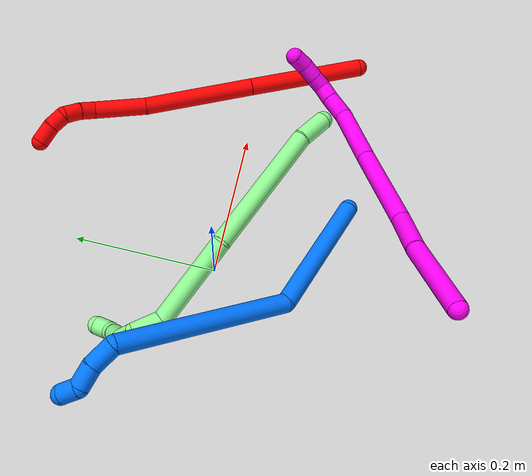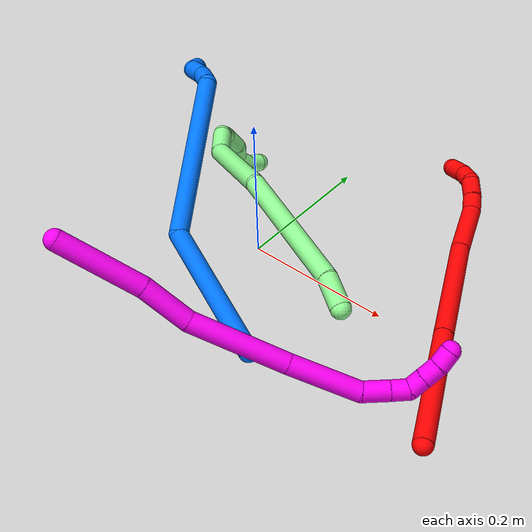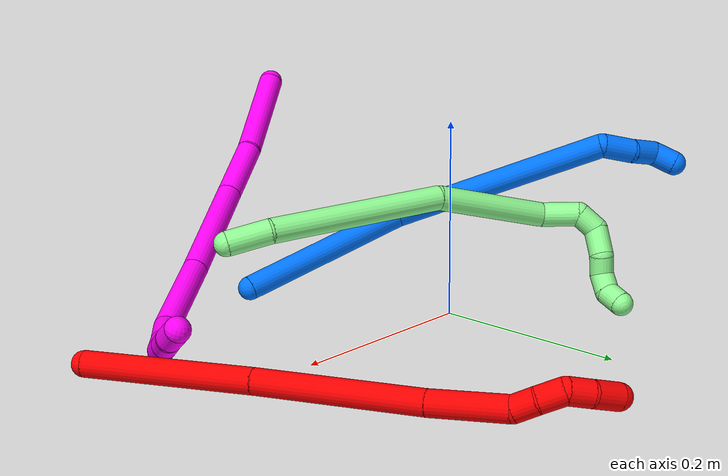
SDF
<sdf version="1.7">
 <world name="default">
  <model name="2">
   <static>0</static>
   <link name="2">
    <collision name="collision-cylinder-e_1_1_4">
     <pose>-0.028417 0.07416 0.022907 -1.27121 -0.35096 0.26013</pose>
     <geometry><cylinder><radius>0.0125</radius><length>0.165312</length></cylinder></geometry>
     <surface>
      <friction><ode><mu>1.16</mu><mu2>1.16</mu2><slip1>0</slip1><slip2>0</slip2></ode></friction>
      <contact><ode><kp>1e+06</kp><kd>1</kd><max_vel>0</max_vel><min_depth>0.001</min_depth></ode></contact>
     </surface>
    </collision>
    <visual name="visual-cylinder-e_1_1_4">
     <pose>-0.028417 0.07416 0.022907 -1.27121 -0.35096 0.26013</pose>
     <geometry><cylinder><radius>0.0125</radius><length>0.165312</length></cylinder></geometry>
     <material><ambient>1 0 0 1</ambient></material>
    </visual>
    <collision name="collision-cylinder-e_2_4_5">
     <pose>-0.082814 0.220427 0.067933 -1.27314 -0.331733 0.246249</pose>
     <geometry><cylinder><radius>0.0125</radius><length>0.159544</length></cylinder></geometry>
     <surface>
      <friction><ode><mu>1.16</mu><mu2>1.16</mu2><slip1>0</slip1><slip2>0</slip2></ode></friction>
      <contact><ode><kp>1e+06</kp><kd>1</kd><max_vel>0</max_vel><min_depth>0.001</min_depth></ode></contact>
     </surface>
    </collision>
    <visual name="visual-cylinder-e_2_4_5">
     <pose>-0.082814 0.220427 0.067933 -1.27314 -0.331733 0.246249</pose>
     <geometry><cylinder><radius>0.0125</radius><length>0.159544</length></cylinder></geometry>
     <material><ambient>1 0 0 1</ambient></material>
    </visual>
    <collision name="collision-cylinder-e_3_5_6">
     <pose>-0.123238 0.325096 0.103883 -1.16916 -0.387606 0.258306</pose>
     <geometry><cylinder><radius>0.0125</radius><length>0.076426</length></cylinder></geometry>
     <surface>
      <friction><ode><mu>1.16</mu><mu2>1.16</mu2><slip1>0</slip1><slip2>0</slip2></ode></friction>
      <contact><ode><kp>1e+06</kp><kd>1</kd><max_vel>0</max_vel><min_depth>0.001</min_depth></ode></contact>
     </surface>
    </collision>
    <visual name="visual-cylinder-e_3_5_6">
     <pose>-0.123238 0.325096 0.103883 -1.16916 -0.387606 0.258306</pose>
     <geometry><cylinder><radius>0.0125</radius><length>0.076426</length></cylinder></geometry>
     <material><ambient>1 0 0 1</ambient></material>
    </visual>
    <collision name="collision-cylinder-e_4_6_7">
     <pose>-0.145677 0.365188 0.120355 -1.23335 -0.786359 0.571954</pose>
     <geometry><cylinder><radius>0.0125</radius><length>0.022591</length></cylinder></geometry>
     <surface>
      <friction><ode><mu>1.16</mu><mu2>1.16</mu2><slip1>0</slip1><slip2>0</slip2></ode></friction>
      <contact><ode><kp>1e+06</kp><kd>1</kd><max_vel>0</max_vel><min_depth>0.001</min_depth></ode></contact>
     </surface>
    </collision>
    <visual name="visual-cylinder-e_4_6_7">
     <pose>-0.145677 0.365188 0.120355 -1.23335 -0.786359 0.571954</pose>
     <geometry><cylinder><radius>0.0125</radius><length>0.022591</length></cylinder></geometry>
     <material><ambient>1 0 0 1</ambient></material>
    </visual>
    <collision name="collision-cylinder-e_5_7_8">
     <pose>-0.162231 0.381701 0.123956 -1.46439 -0.758393 0.687896</pose>
     <geometry><cylinder><radius>0.0125</radius><length>0.024891</length></cylinder></geometry>
     <surface>
      <friction><ode><mu>1.16</mu><mu2>1.16</mu2><slip1>0</slip1><slip2>0</slip2></ode></friction>
      <contact><ode><kp>1e+06</kp><kd>1</kd><max_vel>0</max_vel><min_depth>0.001</min_depth></ode></contact>
     </surface>
    </collision>
    <visual name="visual-cylinder-e_5_7_8">
     <pose>-0.162231 0.381701 0.123956 -1.46439 -0.758393 0.687896</pose>
     <geometry><cylinder><radius>0.0125</radius><length>0.024891</length></cylinder></geometry>
     <material><ambient>1 0 0 1</ambient></material>
    </visual>
    <collision name="collision-cylinder-e_6_8_9">
     <pose>-0.173616 0.401691 0.121938 -1.83505 -0.242912 0.31628</pose>
     <geometry><cylinder><radius>0.0125</radius><length>0.023494</length></cylinder></geometry>
     <surface>
      <friction><ode><mu>1.16</mu><mu2>1.16</mu2><slip1>0</slip1><slip2>0</slip2></ode></friction>
      <contact><ode><kp>1e+06</kp><kd>1</kd><max_vel>0</max_vel><min_depth>0.001</min_depth></ode></contact>
     </surface>
    </collision>
    <visual name="visual-cylinder-e_6_8_9">
     <pose>-0.173616 0.401691 0.121938 -1.83505 -0.242912 0.31628</pose>
     <geometry><cylinder><radius>0.0125</radius><length>0.023494</length></cylinder></geometry>
     <material><ambient>1 0 0 1</ambient></material>
    </visual>
    <collision name="collision-cylinder-e_7_9_2">
     <pose>-0.179036 0.424736 0.112577 -2.05828 -0.188151 0.311098</pose>
     <geometry><cylinder><radius>0.0125</radius><length>0.027743</length></cylinder></geometry>
     <surface>
      <friction><ode><mu>1.16</mu><mu2>1.16</mu2><slip1>0</slip1><slip2>0</slip2></ode></friction>
      <contact><ode><kp>1e+06</kp><kd>1</kd><max_vel>0</max_vel><min_depth>0.001</min_depth></ode></contact>
     </surface>
    </collision>
    <visual name="visual-cylinder-e_7_9_2">
     <pose>-0.179036 0.424736 0.112577 -2.05828 -0.188151 0.311098</pose>
     <geometry><cylinder><radius>0.0125</radius><length>0.027743</length></cylinder></geometry>
     <material><ambient>1 0 0 1</ambient></material>
    </visual>
    <collision name="collision-sphere-2">
     <pose>-0.18163 0.436776 0.106194 0 -0 0</pose>
     <geometry><sphere><radius>0.0125</radius></sphere></geometry>
     <surface>
      <friction><ode><mu>1.16</mu><mu2>1.16</mu2><slip1>0</slip1><slip2>0</slip2></ode></friction>
      <contact><ode><kp>1e+06</kp><kd>1</kd><max_vel>0</max_vel><min_depth>0.001</min_depth></ode></contact>
     </surface>
    </collision>
    <visual name="visual-sphere-2">
     <pose>-0.18163 0.436776 0.106194 0 -0 0</pose>
     <geometry><sphere><radius>0.0125</radius></sphere></geometry>
     <material><ambient>1 0 0 1</ambient></material>
    </visual>
    <collision name="collision-sphere-9">
     <pose>-0.176441 0.412697 0.11896 0 -0 0</pose>
     <geometry><sphere><radius>0.0125</radius></sphere></geometry>
     <surface>
      <friction><ode><mu>1.16</mu><mu2>1.16</mu2><slip1>0</slip1><slip2>0</slip2></ode></friction>
      <contact><ode><kp>1e+06</kp><kd>1</kd><max_vel>0</max_vel><min_depth>0.001</min_depth></ode></contact>
     </surface>
    </collision>
    <visual name="visual-sphere-9">
     <pose>-0.176441 0.412697 0.11896 0 -0 0</pose>
     <geometry><sphere><radius>0.0125</radius></sphere></geometry>
     <material><ambient>1 0 0 1</ambient></material>
    </visual>
    <collision name="collision-sphere-4">
     <pose>-0.056834 0.14832 0.045813 0 -0 0</pose>
     <geometry><sphere><radius>0.0125</radius></sphere></geometry>
     <surface>
      <friction><ode><mu>1.16</mu><mu2>1.16</mu2><slip1>0</slip1><slip2>0</slip2></ode></friction>
      <contact><ode><kp>1e+06</kp><kd>1</kd><max_vel>0</max_vel><min_depth>0.001</min_depth></ode></contact>
     </surface>
    </collision>
    <visual name="visual-sphere-4">
     <pose>-0.056834 0.14832 0.045813 0 -0 0</pose>
     <geometry><sphere><radius>0.0125</radius></sphere></geometry>
     <material><ambient>1 0 0 1</ambient></material>
    </visual>
    <collision name="collision-sphere-1">
     <geometry><sphere><radius>0.0125</radius></sphere></geometry>
     <surface>
      <friction><ode><mu>1.16</mu><mu2>1.16</mu2><slip1>0</slip1><slip2>0</slip2></ode></friction>
      <contact><ode><kp>1e+06</kp><kd>1</kd><max_vel>0</max_vel><min_depth>0.001</min_depth></ode></contact>
     </surface>
    </collision>
    <visual name="visual-sphere-1">
     <geometry><sphere><radius>0.0125</radius></sphere></geometry>
     <material><ambient>1 0 0 1</ambient></material>
    </visual>
    <collision name="collision-sphere-8">
     <pose>-0.17079 0.390685 0.124916 0 -0 0</pose>
     <geometry><sphere><radius>0.0125</radius></sphere></geometry>
     <surface>
      <friction><ode><mu>1.16</mu><mu2>1.16</mu2><slip1>0</slip1><slip2>0</slip2></ode></friction>
      <contact><ode><kp>1e+06</kp><kd>1</kd><max_vel>0</max_vel><min_depth>0.001</min_depth></ode></contact>
     </surface>
    </collision>
    <visual name="visual-sphere-8">
     <pose>-0.17079 0.390685 0.124916 0 -0 0</pose>
     <geometry><sphere><radius>0.0125</radius></sphere></geometry>
     <material><ambient>1 0 0 1</ambient></material>
    </visual>
    <collision name="collision-sphere-5">
     <pose>-0.108795 0.292533 0.090053 0 -0 0</pose>
     <geometry><sphere><radius>0.0125</radius></sphere></geometry>
     <surface>
      <friction><ode><mu>1.16</mu><mu2>1.16</mu2><slip1>0</slip1><slip2>0</slip2></ode></friction>
      <contact><ode><kp>1e+06</kp><kd>1</kd><max_vel>0</max_vel><min_depth>0.001</min_depth></ode></contact>
     </surface>
    </collision>
    <visual name="visual-sphere-5">
     <pose>-0.108795 0.292533 0.090053 0 -0 0</pose>
     <geometry><sphere><radius>0.0125</radius></sphere></geometry>
     <material><ambient>1 0 0 1</ambient></material>
    </visual>
    <collision name="collision-sphere-6">
     <pose>-0.137682 0.357658 0.117713 0 -0 0</pose>
     <geometry><sphere><radius>0.0125</radius></sphere></geometry>
     <surface>
      <friction><ode><mu>1.16</mu><mu2>1.16</mu2><slip1>0</slip1><slip2>0</slip2></ode></friction>
      <contact><ode><kp>1e+06</kp><kd>1</kd><max_vel>0</max_vel><min_depth>0.001</min_depth></ode></contact>
     </surface>
    </collision>
    <visual name="visual-sphere-6">
     <pose>-0.137682 0.357658 0.117713 0 -0 0</pose>
     <geometry><sphere><radius>0.0125</radius></sphere></geometry>
     <material><ambient>1 0 0 1</ambient></material>
    </visual>
    <collision name="collision-sphere-7">
     <pose>-0.153671 0.372718 0.122997 0 -0 0</pose>
     <geometry><sphere><radius>0.0125</radius></sphere></geometry>
     <surface>
      <friction><ode><mu>1.16</mu><mu2>1.16</mu2><slip1>0</slip1><slip2>0</slip2></ode></friction>
      <contact><ode><kp>1e+06</kp><kd>1</kd><max_vel>0</max_vel><min_depth>0.001</min_depth></ode></contact>
     </surface>
    </collision>
    <visual name="visual-sphere-7">
     <pose>-0.153671 0.372718 0.122997 0 -0 0</pose>
     <geometry><sphere><radius>0.0125</radius></sphere></geometry>
     <material><ambient>1 0 0 1</ambient></material>
    </visual>
    <inertial>
     <pose>-0.087407 0.222489 0.068713 0 -0 0</pose>
     <mass>0.5</mass>
     <inertia>
      <ixx>0.000877</ixx>
      <ixy>0</ixy>
      <ixz>0</ixz>
      <iyy>0.000504</iyy>
      <iyz>0</iyz>
      <izz>-0.000425</izz>
     </inertia>
    </inertial>
   </link>
   <pose>0.355545 -0.135588 0.011497 -1.11576 1.11723 -0.430069</pose>
  </model>
  <model name="10">
   <static>0</static>
   <link name="10">
    <collision name="collision-cylinder-e_1_1_4">
     <pose>0.034156 0.029246 -0.029288 -2.35691 0.689935 -1.43015</pose>
     <geometry><cylinder><radius>0.0125</radius><length>0.107326</length></cylinder></geometry>
     <surface>
      <friction><ode><mu>1.16</mu><mu2>1.16</mu2><slip1>0</slip1><slip2>0</slip2></ode></friction>
      <contact><ode><kp>1e+06</kp><kd>1</kd><max_vel>0</max_vel><min_depth>0.001</min_depth></ode></contact>
     </surface>
    </collision>
    <visual name="visual-cylinder-e_1_1_4">
     <pose>0.034156 0.029246 -0.029288 -2.35691 0.689935 -1.43015</pose>
     <geometry><cylinder><radius>0.0125</radius><length>0.107326</length></cylinder></geometry>
     <material><ambient>1 0 0.964706 1</ambient></material>
    </visual>
    <collision name="collision-cylinder-e_2_4_5">
     <pose>0.087997 0.071573 -0.078564 -2.56211 0.689227 -1.75536</pose>
     <geometry><cylinder><radius>0.0125</radius><length>0.061907</length></cylinder></geometry>
     <surface>
      <friction><ode><mu>1.16</mu><mu2>1.16</mu2><slip1>0</slip1><slip2>0</slip2></ode></friction>
      <contact><ode><kp>1e+06</kp><kd>1</kd><max_vel>0</max_vel><min_depth>0.001</min_depth></ode></contact>
     </surface>
    </collision>
    <visual name="visual-cylinder-e_2_4_5">
     <pose>0.087997 0.071573 -0.078564 -2.56211 0.689227 -1.75536</pose>
     <geometry><cylinder><radius>0.0125</radius><length>0.061907</length></cylinder></geometry>
     <material><ambient>1 0 0.964706 1</ambient></material>
    </visual>
    <collision name="collision-cylinder-e_3_5_6">
     <pose>0.152184 0.116358 -0.124906 -2.26428 0.823586 -1.49935</pose>
     <geometry><cylinder><radius>0.0125</radius><length>0.121328</length></cylinder></geometry>
     <surface>
      <friction><ode><mu>1.16</mu><mu2>1.16</mu2><slip1>0</slip1><slip2>0</slip2></ode></friction>
      <contact><ode><kp>1e+06</kp><kd>1</kd><max_vel>0</max_vel><min_depth>0.001</min_depth></ode></contact>
     </surface>
    </collision>
    <visual name="visual-cylinder-e_3_5_6">
     <pose>0.152184 0.116358 -0.124906 -2.26428 0.823586 -1.49935</pose>
     <geometry><cylinder><radius>0.0125</radius><length>0.121328</length></cylinder></geometry>
     <material><ambient>1 0 0.964706 1</ambient></material>
    </visual>
    <collision name="collision-cylinder-e_4_6_7">
     <pose>0.230598 0.171226 -0.168788 -2.21862 0.862489 -1.49318</pose>
     <geometry><cylinder><radius>0.0125</radius><length>0.089305</length></cylinder></geometry>
     <surface>
      <friction><ode><mu>1.16</mu><mu2>1.16</mu2><slip1>0</slip1><slip2>0</slip2></ode></friction>
      <contact><ode><kp>1e+06</kp><kd>1</kd><max_vel>0</max_vel><min_depth>0.001</min_depth></ode></contact>
     </surface>
    </collision>
    <visual name="visual-cylinder-e_4_6_7">
     <pose>0.230598 0.171226 -0.168788 -2.21862 0.862489 -1.49318</pose>
     <geometry><cylinder><radius>0.0125</radius><length>0.089305</length></cylinder></geometry>
     <material><ambient>1 0 0.964706 1</ambient></material>
    </visual>
    <collision name="collision-cylinder-e_5_7_8">
     <pose>0.27678 0.205861 -0.186798 -1.61268 0.818571 -0.8496</pose>
     <geometry><cylinder><radius>0.0125</radius><length>0.033609</length></cylinder></geometry>
     <surface>
      <friction><ode><mu>1.16</mu><mu2>1.16</mu2><slip1>0</slip1><slip2>0</slip2></ode></friction>
      <contact><ode><kp>1e+06</kp><kd>1</kd><max_vel>0</max_vel><min_depth>0.001</min_depth></ode></contact>
     </surface>
    </collision>
    <visual name="visual-cylinder-e_5_7_8">
     <pose>0.27678 0.205861 -0.186798 -1.61268 0.818571 -0.8496</pose>
     <geometry><cylinder><radius>0.0125</radius><length>0.033609</length></cylinder></geometry>
     <material><ambient>1 0 0.964706 1</ambient></material>
    </visual>
    <collision name="collision-cylinder-e_6_8_9">
     <pose>0.297846 0.224597 -0.186954 -1.52609 0.880042 -0.846063</pose>
     <geometry><cylinder><radius>0.0125</radius><length>0.022825</length></cylinder></geometry>
     <surface>
      <friction><ode><mu>1.16</mu><mu2>1.16</mu2><slip1>0</slip1><slip2>0</slip2></ode></friction>
      <contact><ode><kp>1e+06</kp><kd>1</kd><max_vel>0</max_vel><min_depth>0.001</min_depth></ode></contact>
     </surface>
    </collision>
    <visual name="visual-cylinder-e_6_8_9">
     <pose>0.297846 0.224597 -0.186954 -1.52609 0.880042 -0.846063</pose>
     <geometry><cylinder><radius>0.0125</radius><length>0.022825</length></cylinder></geometry>
     <material><ambient>1 0 0.964706 1</ambient></material>
    </visual>
    <collision name="collision-cylinder-e_7_9_10">
     <pose>0.312043 0.237536 -0.180358 -0.735584 0.568208 -0.22409</pose>
     <geometry><cylinder><radius>0.0125</radius><length>0.02007</length></cylinder></geometry>
     <surface>
      <friction><ode><mu>1.16</mu><mu2>1.16</mu2><slip1>0</slip1><slip2>0</slip2></ode></friction>
      <contact><ode><kp>1e+06</kp><kd>1</kd><max_vel>0</max_vel><min_depth>0.001</min_depth></ode></contact>
     </surface>
    </collision>
    <visual name="visual-cylinder-e_7_9_10">
     <pose>0.312043 0.237536 -0.180358 -0.735584 0.568208 -0.22409</pose>
     <geometry><cylinder><radius>0.0125</radius><length>0.02007</length></cylinder></geometry>
     <material><ambient>1 0 0.964706 1</ambient></material>
    </visual>
    <collision name="collision-cylinder-e_8_10_11">
     <pose>0.32351 0.249303 -0.167131 -0.719221 0.58072 -0.223738</pose>
     <geometry><cylinder><radius>0.0125</radius><length>0.022118</length></cylinder></geometry>
     <surface>
      <friction><ode><mu>1.16</mu><mu2>1.16</mu2><slip1>0</slip1><slip2>0</slip2></ode></friction>
      <contact><ode><kp>1e+06</kp><kd>1</kd><max_vel>0</max_vel><min_depth>0.001</min_depth></ode></contact>
     </surface>
    </collision>
    <visual name="visual-cylinder-e_8_10_11">
     <pose>0.32351 0.249303 -0.167131 -0.719221 0.58072 -0.223738</pose>
     <geometry><cylinder><radius>0.0125</radius><length>0.022118</length></cylinder></geometry>
     <material><ambient>1 0 0.964706 1</ambient></material>
    </visual>
    <collision name="collision-cylinder-e_9_11_2">
     <pose>0.333401 0.261236 -0.151993 -0.62 0.363443 -0.117584</pose>
     <geometry><cylinder><radius>0.0125</radius><length>0.021511</length></cylinder></geometry>
     <surface>
      <friction><ode><mu>1.16</mu><mu2>1.16</mu2><slip1>0</slip1><slip2>0</slip2></ode></friction>
      <contact><ode><kp>1e+06</kp><kd>1</kd><max_vel>0</max_vel><min_depth>0.001</min_depth></ode></contact>
     </surface>
    </collision>
    <visual name="visual-cylinder-e_9_11_2">
     <pose>0.333401 0.261236 -0.151993 -0.62 0.363443 -0.117584</pose>
     <geometry><cylinder><radius>0.0125</radius><length>0.021511</length></cylinder></geometry>
     <material><ambient>1 0 0.964706 1</ambient></material>
    </visual>
    <collision name="collision-sphere-2">
     <pose>0.337225 0.267077 -0.143811 0 -0 0</pose>
     <geometry><sphere><radius>0.0125</radius></sphere></geometry>
     <surface>
      <friction><ode><mu>1.16</mu><mu2>1.16</mu2><slip1>0</slip1><slip2>0</slip2></ode></friction>
      <contact><ode><kp>1e+06</kp><kd>1</kd><max_vel>0</max_vel><min_depth>0.001</min_depth></ode></contact>
     </surface>
    </collision>
    <visual name="visual-sphere-2">
     <pose>0.337225 0.267077 -0.143811 0 -0 0</pose>
     <geometry><sphere><radius>0.0125</radius></sphere></geometry>
     <material><ambient>1 0 0.964706 1</ambient></material>
    </visual>
    <collision name="collision-sphere-11">
     <pose>0.329577 0.255395 -0.160175 0 -0 0</pose>
     <geometry><sphere><radius>0.0125</radius></sphere></geometry>
     <surface>
      <friction><ode><mu>1.16</mu><mu2>1.16</mu2><slip1>0</slip1><slip2>0</slip2></ode></friction>
      <contact><ode><kp>1e+06</kp><kd>1</kd><max_vel>0</max_vel><min_depth>0.001</min_depth></ode></contact>
     </surface>
    </collision>
    <visual name="visual-sphere-11">
     <pose>0.329577 0.255395 -0.160175 0 -0 0</pose>
     <geometry><sphere><radius>0.0125</radius></sphere></geometry>
     <material><ambient>1 0 0.964706 1</ambient></material>
    </visual>
    <collision name="collision-sphere-10">
     <pose>0.317443 0.243212 -0.174087 0 -0 0</pose>
     <geometry><sphere><radius>0.0125</radius></sphere></geometry>
     <surface>
      <friction><ode><mu>1.16</mu><mu2>1.16</mu2><slip1>0</slip1><slip2>0</slip2></ode></friction>
      <contact><ode><kp>1e+06</kp><kd>1</kd><max_vel>0</max_vel><min_depth>0.001</min_depth></ode></contact>
     </surface>
    </collision>
    <visual name="visual-sphere-10">
     <pose>0.317443 0.243212 -0.174087 0 -0 0</pose>
     <geometry><sphere><radius>0.0125</radius></sphere></geometry>
     <material><ambient>1 0 0.964706 1</ambient></material>
    </visual>
    <collision name="collision-sphere-9">
     <pose>0.306643 0.231861 -0.186629 0 -0 0</pose>
     <geometry><sphere><radius>0.0125</radius></sphere></geometry>
     <surface>
      <friction><ode><mu>1.16</mu><mu2>1.16</mu2><slip1>0</slip1><slip2>0</slip2></ode></friction>
      <contact><ode><kp>1e+06</kp><kd>1</kd><max_vel>0</max_vel><min_depth>0.001</min_depth></ode></contact>
     </surface>
    </collision>
    <visual name="visual-sphere-9">
     <pose>0.306643 0.231861 -0.186629 0 -0 0</pose>
     <geometry><sphere><radius>0.0125</radius></sphere></geometry>
     <material><ambient>1 0 0.964706 1</ambient></material>
    </visual>
    <collision name="collision-sphere-4">
     <pose>0.068312 0.058492 -0.058576 0 -0 0</pose>
     <geometry><sphere><radius>0.0125</radius></sphere></geometry>
     <surface>
      <friction><ode><mu>1.16</mu><mu2>1.16</mu2><slip1>0</slip1><slip2>0</slip2></ode></friction>
      <contact><ode><kp>1e+06</kp><kd>1</kd><max_vel>0</max_vel><min_depth>0.001</min_depth></ode></contact>
     </surface>
    </collision>
    <visual name="visual-sphere-4">
     <pose>0.068312 0.058492 -0.058576 0 -0 0</pose>
     <geometry><sphere><radius>0.0125</radius></sphere></geometry>
     <material><ambient>1 0 0.964706 1</ambient></material>
    </visual>
    <collision name="collision-sphere-1">
     <geometry><sphere><radius>0.0125</radius></sphere></geometry>
     <surface>
      <friction><ode><mu>1.16</mu><mu2>1.16</mu2><slip1>0</slip1><slip2>0</slip2></ode></friction>
      <contact><ode><kp>1e+06</kp><kd>1</kd><max_vel>0</max_vel><min_depth>0.001</min_depth></ode></contact>
     </surface>
    </collision>
    <visual name="visual-sphere-1">
     <geometry><sphere><radius>0.0125</radius></sphere></geometry>
     <material><ambient>1 0 0.964706 1</ambient></material>
    </visual>
    <collision name="collision-sphere-8">
     <pose>0.28905 0.217333 -0.187279 0 -0 0</pose>
     <geometry><sphere><radius>0.0125</radius></sphere></geometry>
     <surface>
      <friction><ode><mu>1.16</mu><mu2>1.16</mu2><slip1>0</slip1><slip2>0</slip2></ode></friction>
      <contact><ode><kp>1e+06</kp><kd>1</kd><max_vel>0</max_vel><min_depth>0.001</min_depth></ode></contact>
     </surface>
    </collision>
    <visual name="visual-sphere-8">
     <pose>0.28905 0.217333 -0.187279 0 -0 0</pose>
     <geometry><sphere><radius>0.0125</radius></sphere></geometry>
     <material><ambient>1 0 0.964706 1</ambient></material>
    </visual>
    <collision name="collision-sphere-5">
     <pose>0.107681 0.084654 -0.098553 0 -0 0</pose>
     <geometry><sphere><radius>0.0125</radius></sphere></geometry>
     <surface>
      <friction><ode><mu>1.16</mu><mu2>1.16</mu2><slip1>0</slip1><slip2>0</slip2></ode></friction>
      <contact><ode><kp>1e+06</kp><kd>1</kd><max_vel>0</max_vel><min_depth>0.001</min_depth></ode></contact>
     </surface>
    </collision>
    <visual name="visual-sphere-5">
     <pose>0.107681 0.084654 -0.098553 0 -0 0</pose>
     <geometry><sphere><radius>0.0125</radius></sphere></geometry>
     <material><ambient>1 0 0.964706 1</ambient></material>
    </visual>
    <collision name="collision-sphere-6">
     <pose>0.196686 0.148063 -0.151259 0 -0 0</pose>
     <geometry><sphere><radius>0.0125</radius></sphere></geometry>
     <surface>
      <friction><ode><mu>1.16</mu><mu2>1.16</mu2><slip1>0</slip1><slip2>0</slip2></ode></friction>
      <contact><ode><kp>1e+06</kp><kd>1</kd><max_vel>0</max_vel><min_depth>0.001</min_depth></ode></contact>
     </surface>
    </collision>
    <visual name="visual-sphere-6">
     <pose>0.196686 0.148063 -0.151259 0 -0 0</pose>
     <geometry><sphere><radius>0.0125</radius></sphere></geometry>
     <material><ambient>1 0 0.964706 1</ambient></material>
    </visual>
    <collision name="collision-sphere-7">
     <pose>0.26451 0.19439 -0.186318 0 -0 0</pose>
     <geometry><sphere><radius>0.0125</radius></sphere></geometry>
     <surface>
      <friction><ode><mu>1.16</mu><mu2>1.16</mu2><slip1>0</slip1><slip2>0</slip2></ode></friction>
      <contact><ode><kp>1e+06</kp><kd>1</kd><max_vel>0</max_vel><min_depth>0.001</min_depth></ode></contact>
     </surface>
    </collision>
    <visual name="visual-sphere-7">
     <pose>0.26451 0.19439 -0.186318 0 -0 0</pose>
     <geometry><sphere><radius>0.0125</radius></sphere></geometry>
     <material><ambient>1 0 0.964706 1</ambient></material>
    </visual>
    <inertial>
     <pose>0.169723 0.12985 -0.118733 0 -0 0</pose>
     <mass>0.5</mass>
     <inertia>
      <ixx>-0.000195</ixx>
      <ixy>0</ixy>
      <ixz>0</ixz>
      <iyy>-5.7e-05</iyy>
      <iyz>0</iyz>
      <izz>-0.000449</izz>
     </inertia>
    </inertial>
   </link>
   <pose>-0.028072 -0.288228 0.200978 -0.297116 -0.204869 0.09551</pose>
  </model>
  <model name="13">
   <static>0</static>
   <link name="13">
    <collision name="collision-cylinder-e_1_1_4">
     <pose>-0.021683 0.003385 0.001257 -1.21517 -1.40578 1.06475</pose>
     <geometry><cylinder><radius>0.0125</radius><length>0.043963</length></cylinder></geometry>
     <surface>
      <friction><ode><mu>1.16</mu><mu2>1.16</mu2><slip1>0</slip1><slip2>0</slip2></ode></friction>
      <contact><ode><kp>1e+06</kp><kd>1</kd><max_vel>0</max_vel><min_depth>0.001</min_depth></ode></contact>
     </surface>
    </collision>
    <visual name="visual-cylinder-e_1_1_4">
     <pose>-0.021683 0.003385 0.001257 -1.21517 -1.40578 1.06475</pose>
     <geometry><cylinder><radius>0.0125</radius><length>0.043963</length></cylinder></geometry>
     <material><ambient>0.564706 0.984314 0.572549 1</ambient></material>
    </visual>
    <collision name="collision-cylinder-e_2_4_5">
     <pose>-0.132217 0.005806 0.020684 0.053017 -1.36881 -0.043264</pose>
     <geometry><cylinder><radius>0.0125</radius><length>0.18139</length></cylinder></geometry>
     <surface>
      <friction><ode><mu>1.16</mu><mu2>1.16</mu2><slip1>0</slip1><slip2>0</slip2></ode></friction>
      <contact><ode><kp>1e+06</kp><kd>1</kd><max_vel>0</max_vel><min_depth>0.001</min_depth></ode></contact>
     </surface>
    </collision>
    <visual name="visual-cylinder-e_2_4_5">
     <pose>-0.132217 0.005806 0.020684 0.053017 -1.36881 -0.043264</pose>
     <geometry><cylinder><radius>0.0125</radius><length>0.18139</length></cylinder></geometry>
     <material><ambient>0.564706 0.984314 0.572549 1</ambient></material>
    </visual>
    <collision name="collision-cylinder-e_3_5_6">
     <pose>-0.278241 -0.013928 0.044431 1.2819 -1.24082 -0.979474</pose>
     <geometry><cylinder><radius>0.0125</radius><length>0.120865</length></cylinder></geometry>
     <surface>
      <friction><ode><mu>1.16</mu><mu2>1.16</mu2><slip1>0</slip1><slip2>0</slip2></ode></friction>
      <contact><ode><kp>1e+06</kp><kd>1</kd><max_vel>0</max_vel><min_depth>0.001</min_depth></ode></contact>
     </surface>
    </collision>
    <visual name="visual-cylinder-e_3_5_6">
     <pose>-0.278241 -0.013928 0.044431 1.2819 -1.24082 -0.979474</pose>
     <geometry><cylinder><radius>0.0125</radius><length>0.120865</length></cylinder></geometry>
     <material><ambient>0.564706 0.984314 0.572549 1</ambient></material>
    </visual>
    <collision name="collision-cylinder-e_4_6_7">
     <pose>-0.353861 -0.031863 0.043998 -3.00346 -1.25295 2.951</pose>
     <geometry><cylinder><radius>0.0125</radius><length>0.038843</length></cylinder></geometry>
     <surface>
      <friction><ode><mu>1.16</mu><mu2>1.16</mu2><slip1>0</slip1><slip2>0</slip2></ode></friction>
      <contact><ode><kp>1e+06</kp><kd>1</kd><max_vel>0</max_vel><min_depth>0.001</min_depth></ode></contact>
     </surface>
    </collision>
    <visual name="visual-cylinder-e_4_6_7">
     <pose>-0.353861 -0.031863 0.043998 -3.00346 -1.25295 2.951</pose>
     <geometry><cylinder><radius>0.0125</radius><length>0.038843</length></cylinder></geometry>
     <material><ambient>0.564706 0.984314 0.572549 1</ambient></material>
    </visual>
    <collision name="collision-cylinder-e_5_7_8">
     <pose>-0.379941 -0.038105 0.032717 2.21076 -0.713055 -1.27622</pose>
     <geometry><cylinder><radius>0.0125</radius><length>0.023332</length></cylinder></geometry>
     <surface>
      <friction><ode><mu>1.16</mu><mu2>1.16</mu2><slip1>0</slip1><slip2>0</slip2></ode></friction>
      <contact><ode><kp>1e+06</kp><kd>1</kd><max_vel>0</max_vel><min_depth>0.001</min_depth></ode></contact>
     </surface>
    </collision>
    <visual name="visual-cylinder-e_5_7_8">
     <pose>-0.379941 -0.038105 0.032717 2.21076 -0.713055 -1.27622</pose>
     <geometry><cylinder><radius>0.0125</radius><length>0.023332</length></cylinder></geometry>
     <material><ambient>0.564706 0.984314 0.572549 1</ambient></material>
    </visual>
    <collision name="collision-cylinder-e_6_8_9">
     <pose>-0.38757 -0.055757 0.017761 2.31241 0.000141 0.000319</pose>
     <geometry><cylinder><radius>0.0125</radius><length>0.028682</length></cylinder></geometry>
     <surface>
      <friction><ode><mu>1.16</mu><mu2>1.16</mu2><slip1>0</slip1><slip2>0</slip2></ode></friction>
      <contact><ode><kp>1e+06</kp><kd>1</kd><max_vel>0</max_vel><min_depth>0.001</min_depth></ode></contact>
     </surface>
    </collision>
    <visual name="visual-cylinder-e_6_8_9">
     <pose>-0.38757 -0.055757 0.017761 2.31241 0.000141 0.000319</pose>
     <geometry><cylinder><radius>0.0125</radius><length>0.028682</length></cylinder></geometry>
     <material><ambient>0.564706 0.984314 0.572549 1</ambient></material>
    </visual>
    <collision name="collision-cylinder-e_7_9_10">
     <pose>-0.387545 -0.076499 0.006056 1.76668 0.002192 0.00267</pose>
     <geometry><cylinder><radius>0.0125</radius><length>0.02073</length></cylinder></geometry>
     <surface>
      <friction><ode><mu>1.16</mu><mu2>1.16</mu2><slip1>0</slip1><slip2>0</slip2></ode></friction>
      <contact><ode><kp>1e+06</kp><kd>1</kd><max_vel>0</max_vel><min_depth>0.001</min_depth></ode></contact>
     </surface>
    </collision>
    <visual name="visual-cylinder-e_7_9_10">
     <pose>-0.387545 -0.076499 0.006056 1.76668 0.002192 0.00267</pose>
     <geometry><cylinder><radius>0.0125</radius><length>0.02073</length></cylinder></geometry>
     <material><ambient>0.564706 0.984314 0.572549 1</ambient></material>
    </visual>
    <collision name="collision-cylinder-e_8_10_11">
     <pose>-0.387483 -0.092734 -0.004637 2.5313 0.003727 0.011833</pose>
     <geometry><cylinder><radius>0.0125</radius><length>0.021175</length></cylinder></geometry>
     <surface>
      <friction><ode><mu>1.16</mu><mu2>1.16</mu2><slip1>0</slip1><slip2>0</slip2></ode></friction>
      <contact><ode><kp>1e+06</kp><kd>1</kd><max_vel>0</max_vel><min_depth>0.001</min_depth></ode></contact>
     </surface>
    </collision>
    <visual name="visual-cylinder-e_8_10_11">
     <pose>-0.387483 -0.092734 -0.004637 2.5313 0.003727 0.011833</pose>
     <geometry><cylinder><radius>0.0125</radius><length>0.021175</length></cylinder></geometry>
     <material><ambient>0.564706 0.984314 0.572549 1</ambient></material>
    </visual>
    <collision name="collision-cylinder-e_9_11_2">
     <pose>-0.391141 -0.100681 -0.02297 2.94933 -0.359511 -2.16587</pose>
     <geometry><cylinder><radius>0.0125</radius><length>0.02102</length></cylinder></geometry>
     <surface>
      <friction><ode><mu>1.16</mu><mu2>1.16</mu2><slip1>0</slip1><slip2>0</slip2></ode></friction>
      <contact><ode><kp>1e+06</kp><kd>1</kd><max_vel>0</max_vel><min_depth>0.001</min_depth></ode></contact>
     </surface>
    </collision>
    <visual name="visual-cylinder-e_9_11_2">
     <pose>-0.391141 -0.100681 -0.02297 2.94933 -0.359511 -2.16587</pose>
     <geometry><cylinder><radius>0.0125</radius><length>0.02102</length></cylinder></geometry>
     <material><ambient>0.564706 0.984314 0.572549 1</ambient></material>
    </visual>
    <collision name="collision-sphere-2">
     <pose>-0.394839 -0.102561 -0.032627 0 -0 0</pose>
     <geometry><sphere><radius>0.0125</radius></sphere></geometry>
     <surface>
      <friction><ode><mu>1.16</mu><mu2>1.16</mu2><slip1>0</slip1><slip2>0</slip2></ode></friction>
      <contact><ode><kp>1e+06</kp><kd>1</kd><max_vel>0</max_vel><min_depth>0.001</min_depth></ode></contact>
     </surface>
    </collision>
    <visual name="visual-sphere-2">
     <pose>-0.394839 -0.102561 -0.032627 0 -0 0</pose>
     <geometry><sphere><radius>0.0125</radius></sphere></geometry>
     <material><ambient>0.564706 0.984314 0.572549 1</ambient></material>
    </visual>
    <collision name="collision-sphere-11">
     <pose>-0.387444 -0.098801 -0.013314 0 -0 0</pose>
     <geometry><sphere><radius>0.0125</radius></sphere></geometry>
     <surface>
      <friction><ode><mu>1.16</mu><mu2>1.16</mu2><slip1>0</slip1><slip2>0</slip2></ode></friction>
      <contact><ode><kp>1e+06</kp><kd>1</kd><max_vel>0</max_vel><min_depth>0.001</min_depth></ode></contact>
     </surface>
    </collision>
    <visual name="visual-sphere-11">
     <pose>-0.387444 -0.098801 -0.013314 0 -0 0</pose>
     <geometry><sphere><radius>0.0125</radius></sphere></geometry>
     <material><ambient>0.564706 0.984314 0.572549 1</ambient></material>
    </visual>
    <collision name="collision-sphere-10">
     <pose>-0.387523 -0.086666 0.004039 0 -0 0</pose>
     <geometry><sphere><radius>0.0125</radius></sphere></geometry>
     <surface>
      <friction><ode><mu>1.16</mu><mu2>1.16</mu2><slip1>0</slip1><slip2>0</slip2></ode></friction>
      <contact><ode><kp>1e+06</kp><kd>1</kd><max_vel>0</max_vel><min_depth>0.001</min_depth></ode></contact>
     </surface>
    </collision>
    <visual name="visual-sphere-10">
     <pose>-0.387523 -0.086666 0.004039 0 -0 0</pose>
     <geometry><sphere><radius>0.0125</radius></sphere></geometry>
     <material><ambient>0.564706 0.984314 0.572549 1</ambient></material>
    </visual>
    <collision name="collision-sphere-9">
     <pose>-0.387568 -0.066332 0.008074 0 -0 0</pose>
     <geometry><sphere><radius>0.0125</radius></sphere></geometry>
     <surface>
      <friction><ode><mu>1.16</mu><mu2>1.16</mu2><slip1>0</slip1><slip2>0</slip2></ode></friction>
      <contact><ode><kp>1e+06</kp><kd>1</kd><max_vel>0</max_vel><min_depth>0.001</min_depth></ode></contact>
     </surface>
    </collision>
    <visual name="visual-sphere-9">
     <pose>-0.387568 -0.066332 0.008074 0 -0 0</pose>
     <geometry><sphere><radius>0.0125</radius></sphere></geometry>
     <material><ambient>0.564706 0.984314 0.572549 1</ambient></material>
    </visual>
    <collision name="collision-sphere-4">
     <pose>-0.043366 0.00677 0.002514 0 -0 0</pose>
     <geometry><sphere><radius>0.0125</radius></sphere></geometry>
     <surface>
      <friction><ode><mu>1.16</mu><mu2>1.16</mu2><slip1>0</slip1><slip2>0</slip2></ode></friction>
      <contact><ode><kp>1e+06</kp><kd>1</kd><max_vel>0</max_vel><min_depth>0.001</min_depth></ode></contact>
     </surface>
    </collision>
    <visual name="visual-sphere-4">
     <pose>-0.043366 0.00677 0.002514 0 -0 0</pose>
     <geometry><sphere><radius>0.0125</radius></sphere></geometry>
     <material><ambient>0.564706 0.984314 0.572549 1</ambient></material>
    </visual>
    <collision name="collision-sphere-1">
     <geometry><sphere><radius>0.0125</radius></sphere></geometry>
     <surface>
      <friction><ode><mu>1.16</mu><mu2>1.16</mu2><slip1>0</slip1><slip2>0</slip2></ode></friction>
      <contact><ode><kp>1e+06</kp><kd>1</kd><max_vel>0</max_vel><min_depth>0.001</min_depth></ode></contact>
     </surface>
    </collision>
    <visual name="visual-sphere-1">
     <geometry><sphere><radius>0.0125</radius></sphere></geometry>
     <material><ambient>0.564706 0.984314 0.572549 1</ambient></material>
    </visual>
    <collision name="collision-sphere-8">
     <pose>-0.387572 -0.045182 0.027448 0 -0 0</pose>
     <geometry><sphere><radius>0.0125</radius></sphere></geometry>
     <surface>
      <friction><ode><mu>1.16</mu><mu2>1.16</mu2><slip1>0</slip1><slip2>0</slip2></ode></friction>
      <contact><ode><kp>1e+06</kp><kd>1</kd><max_vel>0</max_vel><min_depth>0.001</min_depth></ode></contact>
     </surface>
    </collision>
    <visual name="visual-sphere-8">
     <pose>-0.387572 -0.045182 0.027448 0 -0 0</pose>
     <geometry><sphere><radius>0.0125</radius></sphere></geometry>
     <material><ambient>0.564706 0.984314 0.572549 1</ambient></material>
    </visual>
    <collision name="collision-sphere-5">
     <pose>-0.221068 0.004842 0.038853 0 -0 0</pose>
     <geometry><sphere><radius>0.0125</radius></sphere></geometry>
     <surface>
      <friction><ode><mu>1.16</mu><mu2>1.16</mu2><slip1>0</slip1><slip2>0</slip2></ode></friction>
      <contact><ode><kp>1e+06</kp><kd>1</kd><max_vel>0</max_vel><min_depth>0.001</min_depth></ode></contact>
     </surface>
    </collision>
    <visual name="visual-sphere-5">
     <pose>-0.221068 0.004842 0.038853 0 -0 0</pose>
     <geometry><sphere><radius>0.0125</radius></sphere></geometry>
     <material><ambient>0.564706 0.984314 0.572549 1</ambient></material>
    </visual>
    <collision name="collision-sphere-6">
     <pose>-0.335413 -0.032699 0.05001 0 -0 0</pose>
     <geometry><sphere><radius>0.0125</radius></sphere></geometry>
     <surface>
      <friction><ode><mu>1.16</mu><mu2>1.16</mu2><slip1>0</slip1><slip2>0</slip2></ode></friction>
      <contact><ode><kp>1e+06</kp><kd>1</kd><max_vel>0</max_vel><min_depth>0.001</min_depth></ode></contact>
     </surface>
    </collision>
    <visual name="visual-sphere-6">
     <pose>-0.335413 -0.032699 0.05001 0 -0 0</pose>
     <geometry><sphere><radius>0.0125</radius></sphere></geometry>
     <material><ambient>0.564706 0.984314 0.572549 1</ambient></material>
    </visual>
    <collision name="collision-sphere-7">
     <pose>-0.37231 -0.031027 0.037986 0 -0 0</pose>
     <geometry><sphere><radius>0.0125</radius></sphere></geometry>
     <surface>
      <friction><ode><mu>1.16</mu><mu2>1.16</mu2><slip1>0</slip1><slip2>0</slip2></ode></friction>
      <contact><ode><kp>1e+06</kp><kd>1</kd><max_vel>0</max_vel><min_depth>0.001</min_depth></ode></contact>
     </surface>
    </collision>
    <visual name="visual-sphere-7">
     <pose>-0.37231 -0.031027 0.037986 0 -0 0</pose>
     <geometry><sphere><radius>0.0125</radius></sphere></geometry>
     <material><ambient>0.564706 0.984314 0.572549 1</ambient></material>
    </visual>
    <inertial>
     <pose>-0.233505 -0.019746 0.023407 0 -0 0</pose>
     <mass>0.5</mass>
     <inertia>
      <ixx>5.6e-05</ixx>
      <ixy>0</ixy>
      <ixz>0</ixz>
      <iyy>0.000601</iyy>
      <iyz>0</iyz>
      <izz>0.000709</izz>
     </inertia>
    </inertial>
   </link>
   <pose>0.211707 -0.099193 0.101267 1.40519 0.04382 -0.583049</pose>
  </model>
  <model name="14">
   <static>0</static>
   <link name="14">
    <collision name="collision-cylinder-e_1_1_4">
     <pose>-0.061812 -0.039884 0.053658 0.639204 -0.746204 -0.257655</pose>
     <geometry><cylinder><radius>0.0125</radius><length>0.182105</length></cylinder></geometry>
     <surface>
      <friction><ode><mu>1.16</mu><mu2>1.16</mu2><slip1>0</slip1><slip2>0</slip2></ode></friction>
      <contact><ode><kp>1e+06</kp><kd>1</kd><max_vel>0</max_vel><min_depth>0.001</min_depth></ode></contact>
     </surface>
    </collision>
    <visual name="visual-cylinder-e_1_1_4">
     <pose>-0.061812 -0.039884 0.053658 0.639204 -0.746204 -0.257655</pose>
     <geometry><cylinder><radius>0.0125</radius><length>0.182105</length></cylinder></geometry>
     <material><ambient>0 0.462745 1 1</ambient></material>
    </visual>
    <collision name="collision-cylinder-e_2_4_5">
     <pose>-0.228703 -0.127187 0.107895 1.55858 -1.14686 -1.13576</pose>
     <geometry><cylinder><radius>0.0125</radius><length>0.230571</length></cylinder></geometry>
     <surface>
      <friction><ode><mu>1.16</mu><mu2>1.16</mu2><slip1>0</slip1><slip2>0</slip2></ode></friction>
      <contact><ode><kp>1e+06</kp><kd>1</kd><max_vel>0</max_vel><min_depth>0.001</min_depth></ode></contact>
     </surface>
    </collision>
    <visual name="visual-cylinder-e_2_4_5">
     <pose>-0.228703 -0.127187 0.107895 1.55858 -1.14686 -1.13576</pose>
     <geometry><cylinder><radius>0.0125</radius><length>0.230571</length></cylinder></geometry>
     <material><ambient>0 0.462745 1 1</ambient></material>
    </visual>
    <collision name="collision-cylinder-e_3_5_6">
     <pose>-0.341045 -0.18932 0.113165 1.26219 -0.439559 -0.323646</pose>
     <geometry><cylinder><radius>0.0125</radius><length>0.034131</length></cylinder></geometry>
     <surface>
      <friction><ode><mu>1.16</mu><mu2>1.16</mu2><slip1>0</slip1><slip2>0</slip2></ode></friction>
      <contact><ode><kp>1e+06</kp><kd>1</kd><max_vel>0</max_vel><min_depth>0.001</min_depth></ode></contact>
     </surface>
    </collision>
    <visual name="visual-cylinder-e_3_5_6">
     <pose>-0.341045 -0.18932 0.113165 1.26219 -0.439559 -0.323646</pose>
     <geometry><cylinder><radius>0.0125</radius><length>0.034131</length></cylinder></geometry>
     <material><ambient>0 0.462745 1 1</ambient></material>
    </visual>
    <collision name="collision-cylinder-e_4_6_7">
     <pose>-0.353038 -0.21521 0.125481 0.972077 -0.336326 -0.1789</pose>
     <geometry><cylinder><radius>0.0125</radius><length>0.028666</length></cylinder></geometry>
     <surface>
      <friction><ode><mu>1.16</mu><mu2>1.16</mu2><slip1>0</slip1><slip2>0</slip2></ode></friction>
      <contact><ode><kp>1e+06</kp><kd>1</kd><max_vel>0</max_vel><min_depth>0.001</min_depth></ode></contact>
     </surface>
    </collision>
    <visual name="visual-cylinder-e_4_6_7">
     <pose>-0.353038 -0.21521 0.125481 0.972077 -0.336326 -0.1789</pose>
     <geometry><cylinder><radius>0.0125</radius><length>0.028666</length></cylinder></geometry>
     <material><ambient>0 0.462745 1 1</ambient></material>
    </visual>
    <collision name="collision-cylinder-e_5_7_2">
     <pose>-0.36214 -0.237632 0.130908 1.7638 -0.364491 -0.440332</pose>
     <geometry><cylinder><radius>0.0125</radius><length>0.024527</length></cylinder></geometry>
     <surface>
      <friction><ode><mu>1.16</mu><mu2>1.16</mu2><slip1>0</slip1><slip2>0</slip2></ode></friction>
      <contact><ode><kp>1e+06</kp><kd>1</kd><max_vel>0</max_vel><min_depth>0.001</min_depth></ode></contact>
     </surface>
    </collision>
    <visual name="visual-cylinder-e_5_7_2">
     <pose>-0.36214 -0.237632 0.130908 1.7638 -0.364491 -0.440332</pose>
     <geometry><cylinder><radius>0.0125</radius><length>0.024527</length></cylinder></geometry>
     <material><ambient>0 0.462745 1 1</ambient></material>
    </visual>
    <collision name="collision-sphere-2">
     <pose>-0.366511 -0.248877 0.12871 0 -0 0</pose>
     <geometry><sphere><radius>0.0125</radius></sphere></geometry>
     <surface>
      <friction><ode><mu>1.16</mu><mu2>1.16</mu2><slip1>0</slip1><slip2>0</slip2></ode></friction>
      <contact><ode><kp>1e+06</kp><kd>1</kd><max_vel>0</max_vel><min_depth>0.001</min_depth></ode></contact>
     </surface>
    </collision>
    <visual name="visual-sphere-2">
     <pose>-0.366511 -0.248877 0.12871 0 -0 0</pose>
     <geometry><sphere><radius>0.0125</radius></sphere></geometry>
     <material><ambient>0 0.462745 1 1</ambient></material>
    </visual>
    <collision name="collision-sphere-7">
     <pose>-0.357768 -0.226387 0.133106 0 -0 0</pose>
     <geometry><sphere><radius>0.0125</radius></sphere></geometry>
     <surface>
      <friction><ode><mu>1.16</mu><mu2>1.16</mu2><slip1>0</slip1><slip2>0</slip2></ode></friction>
      <contact><ode><kp>1e+06</kp><kd>1</kd><max_vel>0</max_vel><min_depth>0.001</min_depth></ode></contact>
     </surface>
    </collision>
    <visual name="visual-sphere-7">
     <pose>-0.357768 -0.226387 0.133106 0 -0 0</pose>
     <geometry><sphere><radius>0.0125</radius></sphere></geometry>
     <material><ambient>0 0.462745 1 1</ambient></material>
    </visual>
    <collision name="collision-sphere-6">
     <pose>-0.348307 -0.204034 0.117855 0 -0 0</pose>
     <geometry><sphere><radius>0.0125</radius></sphere></geometry>
     <surface>
      <friction><ode><mu>1.16</mu><mu2>1.16</mu2><slip1>0</slip1><slip2>0</slip2></ode></friction>
      <contact><ode><kp>1e+06</kp><kd>1</kd><max_vel>0</max_vel><min_depth>0.001</min_depth></ode></contact>
     </surface>
    </collision>
    <visual name="visual-sphere-6">
     <pose>-0.348307 -0.204034 0.117855 0 -0 0</pose>
     <geometry><sphere><radius>0.0125</radius></sphere></geometry>
     <material><ambient>0 0.462745 1 1</ambient></material>
    </visual>
    <collision name="collision-sphere-5">
     <pose>-0.333783 -0.174606 0.108474 0 -0 0</pose>
     <geometry><sphere><radius>0.0125</radius></sphere></geometry>
     <surface>
      <friction><ode><mu>1.16</mu><mu2>1.16</mu2><slip1>0</slip1><slip2>0</slip2></ode></friction>
      <contact><ode><kp>1e+06</kp><kd>1</kd><max_vel>0</max_vel><min_depth>0.001</min_depth></ode></contact>
     </surface>
    </collision>
    <visual name="visual-sphere-5">
     <pose>-0.333783 -0.174606 0.108474 0 -0 0</pose>
     <geometry><sphere><radius>0.0125</radius></sphere></geometry>
     <material><ambient>0 0.462745 1 1</ambient></material>
    </visual>
    <collision name="collision-sphere-1">
     <geometry><sphere><radius>0.0125</radius></sphere></geometry>
     <surface>
      <friction><ode><mu>1.16</mu><mu2>1.16</mu2><slip1>0</slip1><slip2>0</slip2></ode></friction>
      <contact><ode><kp>1e+06</kp><kd>1</kd><max_vel>0</max_vel><min_depth>0.001</min_depth></ode></contact>
     </surface>
    </collision>
    <visual name="visual-sphere-1">
     <geometry><sphere><radius>0.0125</radius></sphere></geometry>
     <material><ambient>0 0.462745 1 1</ambient></material>
    </visual>
    <collision name="collision-sphere-4">
     <pose>-0.123623 -0.079768 0.107315 0 -0 0</pose>
     <geometry><sphere><radius>0.0125</radius></sphere></geometry>
     <surface>
      <friction><ode><mu>1.16</mu><mu2>1.16</mu2><slip1>0</slip1><slip2>0</slip2></ode></friction>
      <contact><ode><kp>1e+06</kp><kd>1</kd><max_vel>0</max_vel><min_depth>0.001</min_depth></ode></contact>
     </surface>
    </collision>
    <visual name="visual-sphere-4">
     <pose>-0.123623 -0.079768 0.107315 0 -0 0</pose>
     <geometry><sphere><radius>0.0125</radius></sphere></geometry>
     <material><ambient>0 0.462745 1 1</ambient></material>
    </visual>
    <inertial>
     <pose>-0.189262 -0.110096 0.090638 0 -0 0</pose>
     <mass>0.5</mass>
     <inertia>
      <ixx>3.8e-05</ixx>
      <ixy>0</ixy>
      <ixz>0</ixz>
      <iyy>0.000807</iyy>
      <iyz>0</iyz>
      <izz>0.001955</izz>
     </inertia>
    </inertial>
   </link>
   <pose>0.126057 -0.161941 0.022549 1.28993 0.788208 -1.13989</pose>
  </model>
 </world>
</sdf>
